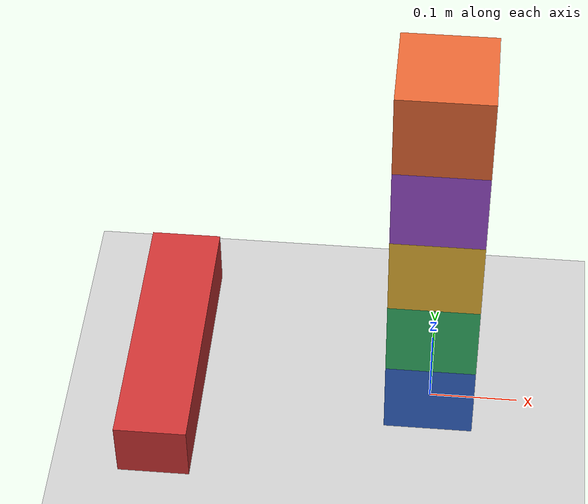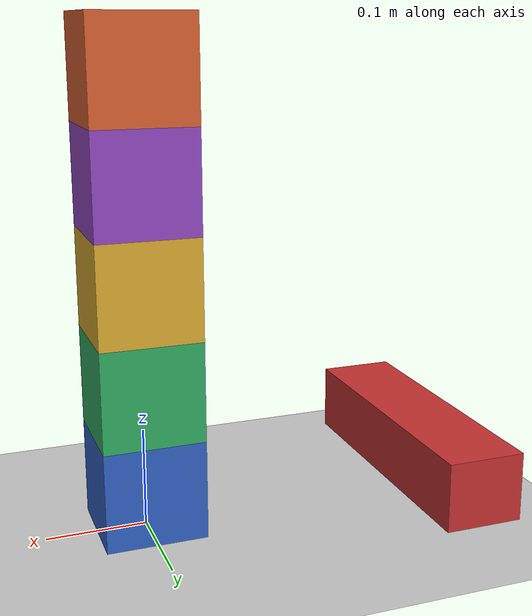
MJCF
<mujoco model="toppling_stack">
  <option timestep="0.002" gravity="0 0 -9.81"/>

  <worldbody>
    <light name="sun" pos="0 0 3" dir="0 0 -1" directional="true"/>
    <camera name="side" pos="0 -1.6 0.5" xyaxes="1 0 0 0 0.3 1"/>
    <geom name="floor" type="plane" size="3 3 0.1" rgba="0.8 0.8 0.8 1" friction="0.8 0.005 0.0001"/>

    <!-- Ram: slides along +x, low enough to hit only the bottom block (z 0.015..0.085) -->
    <body name="ram" pos="-0.30 0 0.05">
      <joint name="ram_slide" type="slide" axis="1 0 0" limited="true" range="0 0.46" damping="1"/>
      <geom name="ram_geom" type="box" size="0.04 0.15 0.035" mass="5" rgba="0.8 0.2 0.2 1" friction="0.8 0.005 0.0001"/>
    </body>

    <!-- Stack of five 10 cm cubes, resting exactly in contact -->
    <body name="block1" pos="0 0 0.05">
      <freejoint name="block1_free"/>
      <geom name="block1_geom" type="box" size="0.05 0.05 0.05" density="500" rgba="0.2 0.4 0.8 1" friction="0.8 0.005 0.0001"/>
    </body>
    <body name="block2" pos="0 0 0.15">
      <freejoint name="block2_free"/>
      <geom name="block2_geom" type="box" size="0.05 0.05 0.05" density="500" rgba="0.2 0.7 0.4 1" friction="0.8 0.005 0.0001"/>
    </body>
    <body name="block3" pos="0 0 0.25">
      <freejoint name="block3_free"/>
      <geom name="block3_geom" type="box" size="0.05 0.05 0.05" density="500" rgba="0.9 0.7 0.2 1" friction="0.8 0.005 0.0001"/>
    </body>
    <body name="block4" pos="0 0 0.35">
      <freejoint name="block4_free"/>
      <geom name="block4_geom" type="box" size="0.05 0.05 0.05" density="500" rgba="0.6 0.3 0.8 1" friction="0.8 0.005 0.0001"/>
    </body>
    <body name="block5" pos="0 0 0.45">
      <freejoint name="block5_free"/>
      <geom name="block5_geom" type="box" size="0.05 0.05 0.05" density="500" rgba="0.9 0.4 0.2 1" friction="0.8 0.005 0.0001"/>
    </body>
  </worldbody>

  <actuator>
    <velocity name="ram_motor" joint="ram_slide" kv="200" ctrllimited="true" ctrlrange="-1 1" forcelimited="true" forcerange="-150 150"/>
  </actuator>

  <keyframe>
    <key name="start" qpos="0  0 0 0.05 1 0 0 0  0 0 0.15 1 0 0 0  0 0 0.25 1 0 0 0  0 0 0.35 1 0 0 0  0 0 0.45 1 0 0 0" qvel="0.4  0 0 0 0 0 0  0 0 0 0 0 0  0 0 0 0 0 0  0 0 0 0 0 0  0 0 0 0 0 0" ctrl="0.4"/>
  </keyframe>
</mujoco>
